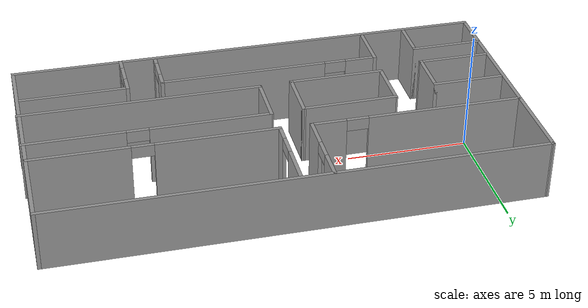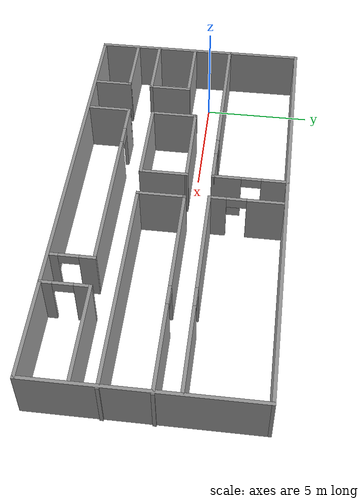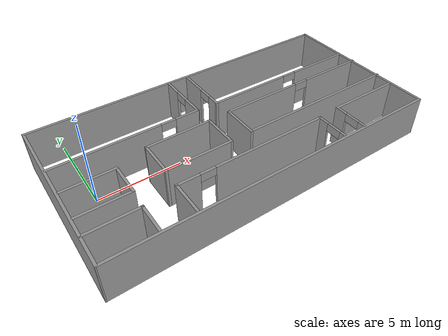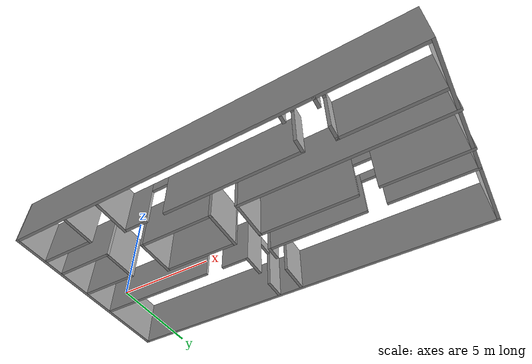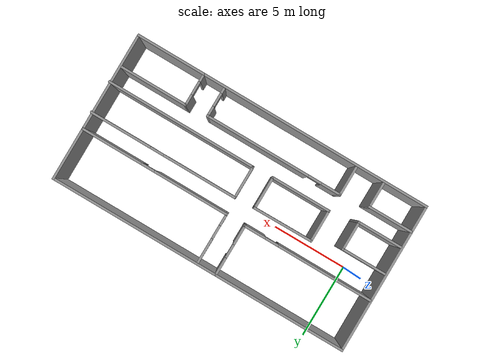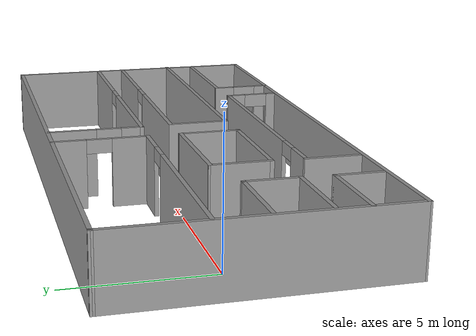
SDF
<?xml version='1.0'?>
<sdf version='1.7'>
  <model name='indoor_rooms'>
    <pose>8.06534 -0.706129 0 0 -0 0</pose>
    <link name='Wall_11'>
      <collision name='Wall_11_Collision'>
        <geometry>
          <box>
            <size>3 0.15 2.5</size>
          </box>
        </geometry>
        <pose>0 0 1.25 0 -0 0</pose>
      </collision>
      <visual name='Wall_11_Visual'>
        <pose>0 0 1.25 0 -0 0</pose>
        <geometry>
          <box>
            <size>3 0.15 2.5</size>
          </box>
        </geometry>
        <material>
          <script>
            <uri>file://media/materials/scripts/gazebo.material</uri>
            <name>Gazebo/Grey</name>
          </script>
          <ambient>1 1 1 1</ambient>
        </material>
        <meta>
          <layer>0</layer>
        </meta>
      </visual>
      <pose>-8.38252 -0.237632 0 0 -0 0</pose>
    </link>
    <link name='Wall_12'>
      <collision name='Wall_12_Collision'>
        <geometry>
          <box>
            <size>2 0.15 2.5</size>
          </box>
        </geometry>
        <pose>0 0 1.25 0 -0 0</pose>
      </collision>
      <visual name='Wall_12_Visual'>
        <pose>0 0 1.25 0 -0 0</pose>
        <geometry>
          <box>
            <size>2 0.15 2.5</size>
          </box>
        </geometry>
        <material>
          <script>
            <uri>file://media/materials/scripts/gazebo.material</uri>
            <name>Gazebo/Grey</name>
          </script>
          <ambient>1 1 1 1</ambient>
        </material>
        <meta>
          <layer>0</layer>
        </meta>
      </visual>
      <pose>-6.95752 -1.16263 0 0 -0 -1.5708</pose>
    </link>
    <link name='Wall_13'>
      <collision name='Wall_13_Collision'>
        <geometry>
          <box>
            <size>3 0.15 2.5</size>
          </box>
        </geometry>
        <pose>0 0 1.25 0 -0 0</pose>
      </collision>
      <visual name='Wall_13_Visual'>
        <pose>0 0 1.25 0 -0 0</pose>
        <geometry>
          <box>
            <size>3 0.15 2.5</size>
          </box>
        </geometry>
        <material>
          <script>
            <uri>file://media/materials/scripts/gazebo.material</uri>
            <name>Gazebo/Grey</name>
          </script>
          <ambient>1 1 1 1</ambient>
        </material>
        <meta>
          <layer>0</layer>
        </meta>
      </visual>
      <pose>-8.38252 -2.08763 0 0 -0 3.14159</pose>
    </link>
    <link name='Wall_15'>
      <collision name='Wall_15_Collision'>
        <geometry>
          <box>
            <size>3 0.15 2.5</size>
          </box>
        </geometry>
        <pose>0 0 1.25 0 -0 0</pose>
      </collision>
      <visual name='Wall_15_Visual'>
        <pose>0 0 1.25 0 -0 0</pose>
        <geometry>
          <box>
            <size>3 0.15 2.5</size>
          </box>
        </geometry>
        <material>
          <script>
            <uri>file://media/materials/scripts/gazebo.material</uri>
            <name>Gazebo/Grey</name>
          </script>
          <ambient>1 1 1 1</ambient>
        </material>
        <meta>
          <layer>0</layer>
        </meta>
      </visual>
      <pose>-8.45113 -3.18788 0 0 -0 0</pose>
    </link>
    <link name='Wall_16'>
      <collision name='Wall_16_Collision'>
        <geometry>
          <box>
            <size>1.75 0.15 2.5</size>
          </box>
        </geometry>
        <pose>0 0 1.25 0 -0 0</pose>
      </collision>
      <visual name='Wall_16_Visual'>
        <pose>0 0 1.25 0 -0 0</pose>
        <geometry>
          <box>
            <size>1.75 0.15 2.5</size>
          </box>
        </geometry>
        <material>
          <script>
            <uri>file://media/materials/scripts/gazebo.material</uri>
            <name>Gazebo/Grey</name>
          </script>
          <ambient>1 1 1 1</ambient>
        </material>
        <meta>
          <layer>0</layer>
        </meta>
      </visual>
      <pose>-7.02613 -3.98788 0 0 -0 -1.5708</pose>
    </link>
    <link name='Wall_18'>
      <pose>-5.56469 1.54624 0 0 -0 0</pose>
      <visual name='Wall_18_Visual_0'>
        <pose>-1.19487 0 1.25 0 -0 0</pose>
        <geometry>
          <box>
            <size>6.36025 0.15 2.5</size>
          </box>
        </geometry>
        <material>
          <script>
            <uri>file://media/materials/scripts/gazebo.material</uri>
            <name>Gazebo/Grey</name>
          </script>
          <ambient>1 1 1 1</ambient>
        </material>
        <meta>
          <layer>0</layer>
        </meta>
      </visual>
      <collision name='Wall_18_Collision_0'>
        <geometry>
          <box>
            <size>6.36025 0.15 2.5</size>
          </box>
        </geometry>
        <pose>-1.19487 0 1.25 0 -0 0</pose>
      </collision>
      <visual name='Wall_18_Visual_1'>
        <pose>3.63013 0 1.25 0 -0 0</pose>
        <geometry>
          <box>
            <size>1.48975 0.15 2.5</size>
          </box>
        </geometry>
        <material>
          <script>
            <uri>file://media/materials/scripts/gazebo.material</uri>
            <name>Gazebo/Grey</name>
          </script>
          <ambient>1 1 1 1</ambient>
        </material>
        <meta>
          <layer>0</layer>
        </meta>
      </visual>
      <collision name='Wall_18_Collision_1'>
        <geometry>
          <box>
            <size>1.48975 0.15 2.5</size>
          </box>
        </geometry>
        <pose>3.63013 0 1.25 0 -0 0</pose>
      </collision>
      <visual name='Wall_18_Visual_2'>
        <pose>2.43525 0 2.25 0 -0 0</pose>
        <geometry>
          <box>
            <size>0.9 0.15 0.5</size>
          </box>
        </geometry>
        <material>
          <script>
            <uri>file://media/materials/scripts/gazebo.material</uri>
            <name>Gazebo/Grey</name>
          </script>
          <ambient>1 1 1 1</ambient>
        </material>
        <meta>
          <layer>0</layer>
        </meta>
      </visual>
      <collision name='Wall_18_Collision_2'>
        <geometry>
          <box>
            <size>0.9 0.15 0.5</size>
          </box>
        </geometry>
        <pose>2.43525 0 2.25 0 -0 0</pose>
      </collision>
    </link>
    <link name='Wall_19'>
      <pose>-1.26469 3.22124 0 0 -0 1.5708</pose>
      <visual name='Wall_19_Visual_0'>
        <pose>-1.06996 0 1.25 0 -0 0</pose>
        <geometry>
          <box>
            <size>1.36008 0.15 2.5</size>
          </box>
        </geometry>
        <material>
          <script>
            <uri>file://media/materials/scripts/gazebo.material</uri>
            <name>Gazebo/Grey</name>
          </script>
          <ambient>1 1 1 1</ambient>
        </material>
        <meta>
          <layer>0</layer>
        </meta>
      </visual>
      <collision name='Wall_19_Collision_0'>
        <geometry>
          <box>
            <size>1.36008 0.15 2.5</size>
          </box>
        </geometry>
        <pose>-1.06996 0 1.25 0 -0 0</pose>
      </collision>
      <visual name='Wall_19_Visual_1'>
        <pose>1.13004 0 1.25 0 -0 0</pose>
        <geometry>
          <box>
            <size>1.23992 0.15 2.5</size>
          </box>
        </geometry>
        <material>
          <script>
            <uri>file://media/materials/scripts/gazebo.material</uri>
            <name>Gazebo/Grey</name>
          </script>
          <ambient>1 1 1 1</ambient>
        </material>
        <meta>
          <layer>0</layer>
        </meta>
      </visual>
      <collision name='Wall_19_Collision_1'>
        <geometry>
          <box>
            <size>1.23992 0.15 2.5</size>
          </box>
        </geometry>
        <pose>1.13004 0 1.25 0 -0 0</pose>
      </collision>
      <visual name='Wall_19_Visual_2'>
        <pose>0.060077 0 2.25 0 -0 0</pose>
        <geometry>
          <box>
            <size>0.9 0.15 0.5</size>
          </box>
        </geometry>
        <material>
          <script>
            <uri>file://media/materials/scripts/gazebo.material</uri>
            <name>Gazebo/Grey</name>
          </script>
          <ambient>1 1 1 1</ambient>
        </material>
        <meta>
          <layer>0</layer>
        </meta>
      </visual>
      <collision name='Wall_19_Collision_2'>
        <geometry>
          <box>
            <size>0.9 0.15 0.5</size>
          </box>
        </geometry>
        <pose>0.060077 0 2.25 0 -0 0</pose>
      </collision>
    </link>
    <link name='Wall_21'>
      <pose>0.015204 3.18741 0 0 -0 -1.5708</pose>
      <visual name='Wall_21_Visual_0'>
        <pose>-0.867181 0 1.25 0 -0 0</pose>
        <geometry>
          <box>
            <size>1.76564 0.15 2.5</size>
          </box>
        </geometry>
        <material>
          <script>
            <uri>file://media/materials/scripts/gazebo.material</uri>
            <name>Gazebo/Grey</name>
          </script>
          <ambient>1 1 1 1</ambient>
        </material>
        <meta>
          <layer>0</layer>
        </meta>
      </visual>
      <collision name='Wall_21_Collision_0'>
        <geometry>
          <box>
            <size>1.76564 0.15 2.5</size>
          </box>
        </geometry>
        <pose>-0.867181 0 1.25 0 -0 0</pose>
      </collision>
      <visual name='Wall_21_Visual_1'>
        <pose>1.33282 0 1.25 0 -0 0</pose>
        <geometry>
          <box>
            <size>0.834362 0.15 2.5</size>
          </box>
        </geometry>
        <material>
          <script>
            <uri>file://media/materials/scripts/gazebo.material</uri>
            <name>Gazebo/Grey</name>
          </script>
          <ambient>1 1 1 1</ambient>
        </material>
        <meta>
          <layer>0</layer>
        </meta>
      </visual>
      <collision name='Wall_21_Collision_1'>
        <geometry>
          <box>
            <size>0.834362 0.15 2.5</size>
          </box>
        </geometry>
        <pose>1.33282 0 1.25 0 -0 0</pose>
      </collision>
      <visual name='Wall_21_Visual_2'>
        <pose>0.465638 0 2.25 0 -0 0</pose>
        <geometry>
          <box>
            <size>0.9 0.15 0.5</size>
          </box>
        </geometry>
        <material>
          <script>
            <uri>file://media/materials/scripts/gazebo.material</uri>
            <name>Gazebo/Grey</name>
          </script>
          <ambient>1 1 1 1</ambient>
        </material>
        <meta>
          <layer>0</layer>
        </meta>
      </visual>
      <collision name='Wall_21_Collision_2'>
        <geometry>
          <box>
            <size>0.9 0.15 0.5</size>
          </box>
        </geometry>
        <pose>0.465638 0 2.25 0 -0 0</pose>
      </collision>
    </link>
    <link name='Wall_22'>
      <pose>4.9402 1.51241 0 0 -0 0</pose>
      <visual name='Wall_22_Visual_0'>
        <pose>-2.4797 0 1.25 0 -0 0</pose>
        <geometry>
          <box>
            <size>5.04061 0.15 2.5</size>
          </box>
        </geometry>
        <material>
          <script>
            <uri>file://media/materials/scripts/gazebo.material</uri>
            <name>Gazebo/Grey</name>
          </script>
          <ambient>1 1 1 1</ambient>
        </material>
        <meta>
          <layer>0</layer>
        </meta>
      </visual>
      <collision name='Wall_22_Collision_0'>
        <geometry>
          <box>
            <size>5.04061 0.15 2.5</size>
          </box>
        </geometry>
        <pose>-2.4797 0 1.25 0 -0 0</pose>
      </collision>
      <visual name='Wall_22_Visual_1'>
        <pose>2.9703 0 1.25 0 -0 0</pose>
        <geometry>
          <box>
            <size>4.05939 0.15 2.5</size>
          </box>
        </geometry>
        <material>
          <script>
            <uri>file://media/materials/scripts/gazebo.material</uri>
            <name>Gazebo/Grey</name>
          </script>
          <ambient>1 1 1 1</ambient>
        </material>
        <meta>
          <layer>0</layer>
        </meta>
      </visual>
      <collision name='Wall_22_Collision_1'>
        <geometry>
          <box>
            <size>4.05939 0.15 2.5</size>
          </box>
        </geometry>
        <pose>2.9703 0 1.25 0 -0 0</pose>
      </collision>
      <visual name='Wall_22_Visual_2'>
        <pose>0.490606 0 2.25 0 -0 0</pose>
        <geometry>
          <box>
            <size>0.9 0.15 0.5</size>
          </box>
        </geometry>
        <material>
          <script>
            <uri>file://media/materials/scripts/gazebo.material</uri>
            <name>Gazebo/Grey</name>
          </script>
          <ambient>1 1 1 1</ambient>
        </material>
        <meta>
          <layer>0</layer>
        </meta>
      </visual>
      <collision name='Wall_22_Collision_2'>
        <geometry>
          <box>
            <size>0.9 0.15 0.5</size>
          </box>
        </geometry>
        <pose>0.490606 0 2.25 0 -0 0</pose>
      </collision>
    </link>
    <link name='Wall_24'>
      <collision name='Wall_24_Collision'>
        <geometry>
          <box>
            <size>2.2157 0.15 2.5</size>
          </box>
        </geometry>
        <pose>0 0 1.25 0 -0 0</pose>
      </collision>
      <visual name='Wall_24_Visual'>
        <pose>0 0 1.25 0 -0 0</pose>
        <geometry>
          <box>
            <size>2.2157 0.15 2.5</size>
          </box>
        </geometry>
        <material>
          <script>
            <uri>file://media/materials/scripts/gazebo.material</uri>
            <name>Gazebo/Grey</name>
          </script>
          <ambient>1 1 1 1</ambient>
        </material>
        <meta>
          <layer>0</layer>
        </meta>
      </visual>
      <pose>-5.08483 -0.721597 0 0 -0 -1.5708</pose>
    </link>
    <link name='Wall_27'>
      <collision name='Wall_27_Collision'>
        <geometry>
          <box>
            <size>4 0.15 2.5</size>
          </box>
        </geometry>
        <pose>0 0 1.25 0 -0 0</pose>
      </collision>
      <visual name='Wall_27_Visual'>
        <pose>0 0 1.25 0 -0 0</pose>
        <geometry>
          <box>
            <size>4 0.15 2.5</size>
          </box>
        </geometry>
        <material>
          <script>
            <uri>file://media/materials/scripts/gazebo.material</uri>
            <name>Gazebo/Grey</name>
          </script>
          <ambient>1 1 1 1</ambient>
        </material>
        <meta>
          <layer>0</layer>
        </meta>
      </visual>
      <pose>-3.15984 -1.75444 0 0 -0 0</pose>
    </link>
    <link name='Wall_28'>
      <collision name='Wall_28_Collision'>
        <geometry>
          <box>
            <size>2.25 0.15 2.5</size>
          </box>
        </geometry>
        <pose>0 0 1.25 0 -0 0</pose>
      </collision>
      <visual name='Wall_28_Visual'>
        <pose>0 0 1.25 0 -0 0</pose>
        <geometry>
          <box>
            <size>2.25 0.15 2.5</size>
          </box>
        </geometry>
        <material>
          <script>
            <uri>file://media/materials/scripts/gazebo.material</uri>
            <name>Gazebo/Grey</name>
          </script>
          <ambient>1 1 1 1</ambient>
        </material>
        <meta>
          <layer>0</layer>
        </meta>
      </visual>
      <pose>-1.23483 -0.704444 0 0 -0 1.5708</pose>
    </link>
    <link name='Wall_29'>
      <collision name='Wall_29_Collision'>
        <geometry>
          <box>
            <size>4 0.15 2.5</size>
          </box>
        </geometry>
        <pose>0 0 1.25 0 -0 0</pose>
      </collision>
      <visual name='Wall_29_Visual'>
        <pose>0 0 1.25 0 -0 0</pose>
        <geometry>
          <box>
            <size>4 0.15 2.5</size>
          </box>
        </geometry>
        <material>
          <script>
            <uri>file://media/materials/scripts/gazebo.material</uri>
            <name>Gazebo/Grey</name>
          </script>
          <ambient>1 1 1 1</ambient>
        </material>
        <meta>
          <layer>0</layer>
        </meta>
      </visual>
      <pose>-3.15984 0.328403 0 0 -0 -3.13268</pose>
    </link>
    <link name='Wall_31'>
      <collision name='Wall_31_Collision'>
        <geometry>
          <box>
            <size>2.25 0.15 2.5</size>
          </box>
        </geometry>
        <pose>0 0 1.25 0 -0 0</pose>
      </collision>
      <visual name='Wall_31_Visual'>
        <pose>0 0 1.25 0 -0 0</pose>
        <geometry>
          <box>
            <size>2.25 0.15 2.5</size>
          </box>
        </geometry>
        <material>
          <script>
            <uri>file://media/materials/scripts/gazebo.material</uri>
            <name>Gazebo/Grey</name>
          </script>
          <ambient>1 1 1 1</ambient>
        </material>
        <meta>
          <layer>0</layer>
        </meta>
      </visual>
      <pose>0.106685 -0.635834 0 0 -0 -1.5708</pose>
    </link>
    <link name='Wall_32'>
      <collision name='Wall_32_Collision'>
        <geometry>
          <box>
            <size>10 0.15 2.5</size>
          </box>
        </geometry>
        <pose>0 0 1.25 0 -0 0</pose>
      </collision>
      <visual name='Wall_32_Visual'>
        <pose>0 0 1.25 0 -0 0</pose>
        <geometry>
          <box>
            <size>10 0.15 2.5</size>
          </box>
        </geometry>
        <material>
          <script>
            <uri>file://media/materials/scripts/gazebo.material</uri>
            <name>Gazebo/Grey</name>
          </script>
          <ambient>1 1 1 1</ambient>
        </material>
        <meta>
          <layer>0</layer>
        </meta>
      </visual>
      <pose>5.03169 -1.68583 0 0 -0 0</pose>
    </link>
    <link name='Wall_34'>
      <pose>5.03169 0.414166 0 0 -0 0</pose>
      <visual name='Wall_34_Visual_0'>
        <pose>-2.51031 0 1.25 0 -0 0</pose>
        <geometry>
          <box>
            <size>4.97937 0.15 2.5</size>
          </box>
        </geometry>
        <material>
          <script>
            <uri>file://media/materials/scripts/gazebo.material</uri>
            <name>Gazebo/Grey</name>
          </script>
          <ambient>1 1 1 1</ambient>
        </material>
        <meta>
          <layer>0</layer>
        </meta>
      </visual>
      <collision name='Wall_34_Collision_0'>
        <geometry>
          <box>
            <size>4.97937 0.15 2.5</size>
          </box>
        </geometry>
        <pose>-2.51031 0 1.25 0 -0 0</pose>
      </collision>
      <visual name='Wall_34_Visual_1'>
        <pose>2.93968 0 1.25 0 -0 0</pose>
        <geometry>
          <box>
            <size>4.12063 0.15 2.5</size>
          </box>
        </geometry>
        <material>
          <script>
            <uri>file://media/materials/scripts/gazebo.material</uri>
            <name>Gazebo/Grey</name>
          </script>
          <ambient>1 1 1 1</ambient>
        </material>
        <meta>
          <layer>0</layer>
        </meta>
      </visual>
      <collision name='Wall_34_Collision_1'>
        <geometry>
          <box>
            <size>4.12063 0.15 2.5</size>
          </box>
        </geometry>
        <pose>2.93968 0 1.25 0 -0 0</pose>
      </collision>
      <visual name='Wall_34_Visual_2'>
        <pose>0.429371 0 2.25 0 -0 0</pose>
        <geometry>
          <box>
            <size>0.9 0.15 0.5</size>
          </box>
        </geometry>
        <material>
          <script>
            <uri>file://media/materials/scripts/gazebo.material</uri>
            <name>Gazebo/Grey</name>
          </script>
          <ambient>1 1 1 1</ambient>
        </material>
        <meta>
          <layer>0</layer>
        </meta>
      </visual>
      <collision name='Wall_34_Collision_2'>
        <geometry>
          <box>
            <size>0.9 0.15 0.5</size>
          </box>
        </geometry>
        <pose>0.429371 0 2.25 0 -0 0</pose>
      </collision>
    </link>
    <link name='Wall_36'>
      <collision name='Wall_36_Collision'>
        <geometry>
          <box>
            <size>2 0.15 2.5</size>
          </box>
        </geometry>
        <pose>0 0 1.25 0 -0 0</pose>
      </collision>
      <visual name='Wall_36_Visual'>
        <pose>0 0 1.25 0 -0 0</pose>
        <geometry>
          <box>
            <size>2 0.15 2.5</size>
          </box>
        </geometry>
        <material>
          <script>
            <uri>file://media/materials/scripts/gazebo.material</uri>
            <name>Gazebo/Grey</name>
          </script>
          <ambient>1 1 1 1</ambient>
        </material>
        <meta>
          <layer>0</layer>
        </meta>
      </visual>
      <pose>-5.15344 -3.84092 0 0 -0 1.5708</pose>
    </link>
    <link name='Wall_37'>
      <pose>-0.603445 -2.91592 0 0 -0 0</pose>
      <visual name='Wall_37_Visual_0'>
        <pose>-3.94381 0 1.25 0 -0 0</pose>
        <geometry>
          <box>
            <size>1.36237 0.15 2.5</size>
          </box>
        </geometry>
        <material>
          <script>
            <uri>file://media/materials/scripts/gazebo.material</uri>
            <name>Gazebo/Grey</name>
          </script>
          <ambient>1 1 1 1</ambient>
        </material>
        <meta>
          <layer>0</layer>
        </meta>
      </visual>
      <collision name='Wall_37_Collision_0'>
        <geometry>
          <box>
            <size>1.36237 0.15 2.5</size>
          </box>
        </geometry>
        <pose>-3.94381 0 1.25 0 -0 0</pose>
      </collision>
      <visual name='Wall_37_Visual_1'>
        <pose>1.13119 0 1.25 0 -0 0</pose>
        <geometry>
          <box>
            <size>6.98763 0.15 2.5</size>
          </box>
        </geometry>
        <material>
          <script>
            <uri>file://media/materials/scripts/gazebo.material</uri>
            <name>Gazebo/Grey</name>
          </script>
          <ambient>1 1 1 1</ambient>
        </material>
        <meta>
          <layer>0</layer>
        </meta>
      </visual>
      <collision name='Wall_37_Collision_1'>
        <geometry>
          <box>
            <size>6.98763 0.15 2.5</size>
          </box>
        </geometry>
        <pose>1.13119 0 1.25 0 -0 0</pose>
      </collision>
      <visual name='Wall_37_Visual_2'>
        <pose>-2.81263 0 2.25 0 -0 0</pose>
        <geometry>
          <box>
            <size>0.9 0.15 0.5</size>
          </box>
        </geometry>
        <material>
          <script>
            <uri>file://media/materials/scripts/gazebo.material</uri>
            <name>Gazebo/Grey</name>
          </script>
          <ambient>1 1 1 1</ambient>
        </material>
        <meta>
          <layer>0</layer>
        </meta>
      </visual>
      <collision name='Wall_37_Collision_2'>
        <geometry>
          <box>
            <size>0.9 0.15 0.5</size>
          </box>
        </geometry>
        <pose>-2.81263 0 2.25 0 -0 0</pose>
      </collision>
    </link>
    <link name='Wall_38'>
      <pose>3.94656 -3.84092 0 0 -0 -1.5708</pose>
      <visual name='Wall_38_Visual_0'>
        <pose>-0.633943 0 1.25 0 -0 0</pose>
        <geometry>
          <box>
            <size>0.732115 0.15 2.5</size>
          </box>
        </geometry>
        <material>
          <script>
            <uri>file://media/materials/scripts/gazebo.material</uri>
            <name>Gazebo/Grey</name>
          </script>
          <ambient>1 1 1 1</ambient>
        </material>
        <meta>
          <layer>0</layer>
        </meta>
      </visual>
      <collision name='Wall_38_Collision_0'>
        <geometry>
          <box>
            <size>0.732115 0.15 2.5</size>
          </box>
        </geometry>
        <pose>-0.633943 0 1.25 0 -0 0</pose>
      </collision>
      <visual name='Wall_38_Visual_1'>
        <pose>0.816057 0 1.25 0 -0 0</pose>
        <geometry>
          <box>
            <size>0.367885 0.15 2.5</size>
          </box>
        </geometry>
        <material>
          <script>
            <uri>file://media/materials/scripts/gazebo.material</uri>
            <name>Gazebo/Grey</name>
          </script>
          <ambient>1 1 1 1</ambient>
        </material>
        <meta>
          <layer>0</layer>
        </meta>
      </visual>
      <collision name='Wall_38_Collision_1'>
        <geometry>
          <box>
            <size>0.367885 0.15 2.5</size>
          </box>
        </geometry>
        <pose>0.816057 0 1.25 0 -0 0</pose>
      </collision>
      <visual name='Wall_38_Visual_2'>
        <pose>0.182115 0 2.25 0 -0 0</pose>
        <geometry>
          <box>
            <size>0.9 0.15 0.5</size>
          </box>
        </geometry>
        <material>
          <script>
            <uri>file://media/materials/scripts/gazebo.material</uri>
            <name>Gazebo/Grey</name>
          </script>
          <ambient>1 1 1 1</ambient>
        </material>
        <meta>
          <layer>0</layer>
        </meta>
      </visual>
      <collision name='Wall_38_Collision_2'>
        <geometry>
          <box>
            <size>0.9 0.15 0.5</size>
          </box>
        </geometry>
        <pose>0.182115 0 2.25 0 -0 0</pose>
      </collision>
    </link>
    <link name='Wall_4'>
      <collision name='Wall_4_Collision'>
        <geometry>
          <box>
            <size>19.9546 0.15 2.5</size>
          </box>
        </geometry>
        <pose>0 0 1.25 0 -0 0</pose>
      </collision>
      <visual name='Wall_4_Visual'>
        <pose>0 0 1.25 0 -0 0</pose>
        <geometry>
          <box>
            <size>19.9546 0.15 2.5</size>
          </box>
        </geometry>
        <material>
          <script>
            <uri>file://media/materials/scripts/gazebo.material</uri>
            <name>Gazebo/Grey</name>
          </script>
          <ambient>1 1 1 1</ambient>
        </material>
        <meta>
          <layer>0</layer>
        </meta>
      </visual>
      <pose>-0.008656 -4.925 0 0 -0 0</pose>
    </link>
    <link name='Wall_40'>
      <pose>5.40112 -3.85314 0 0 -0 1.5708</pose>
      <visual name='Wall_40_Visual_0'>
        <pose>-0.842201 0 1.25 0 -0 0</pose>
        <geometry>
          <box>
            <size>0.565597 0.15 2.5</size>
          </box>
        </geometry>
        <material>
          <script>
            <uri>file://media/materials/scripts/gazebo.material</uri>
            <name>Gazebo/Grey</name>
          </script>
          <ambient>1 1 1 1</ambient>
        </material>
        <meta>
          <layer>0</layer>
        </meta>
      </visual>
      <collision name='Wall_40_Collision_0'>
        <geometry>
          <box>
            <size>0.565597 0.15 2.5</size>
          </box>
        </geometry>
        <pose>-0.842201 0 1.25 0 -0 0</pose>
      </collision>
      <visual name='Wall_40_Visual_1'>
        <pose>0.732799 0 1.25 0 -0 0</pose>
        <geometry>
          <box>
            <size>0.784403 0.15 2.5</size>
          </box>
        </geometry>
        <material>
          <script>
            <uri>file://media/materials/scripts/gazebo.material</uri>
            <name>Gazebo/Grey</name>
          </script>
          <ambient>1 1 1 1</ambient>
        </material>
        <meta>
          <layer>0</layer>
        </meta>
      </visual>
      <collision name='Wall_40_Collision_1'>
        <geometry>
          <box>
            <size>0.784403 0.15 2.5</size>
          </box>
        </geometry>
        <pose>0.732799 0 1.25 0 -0 0</pose>
      </collision>
      <visual name='Wall_40_Visual_2'>
        <pose>-0.109403 0 2.25 0 -0 0</pose>
        <geometry>
          <box>
            <size>0.9 0.15 0.5</size>
          </box>
        </geometry>
        <material>
          <script>
            <uri>file://media/materials/scripts/gazebo.material</uri>
            <name>Gazebo/Grey</name>
          </script>
          <ambient>1 1 1 1</ambient>
        </material>
        <meta>
          <layer>0</layer>
        </meta>
      </visual>
      <collision name='Wall_40_Collision_2'>
        <geometry>
          <box>
            <size>0.9 0.15 0.5</size>
          </box>
        </geometry>
        <pose>-0.109403 0 2.25 0 -0 0</pose>
      </collision>
    </link>
    <link name='Wall_41'>
      <collision name='Wall_41_Collision'>
        <geometry>
          <box>
            <size>4.5 0.15 2.5</size>
          </box>
        </geometry>
        <pose>0 0 1.25 0 -0 0</pose>
      </collision>
      <visual name='Wall_41_Visual'>
        <pose>0 0 1.25 0 -0 0</pose>
        <geometry>
          <box>
            <size>4.5 0.15 2.5</size>
          </box>
        </geometry>
        <material>
          <script>
            <uri>file://media/materials/scripts/gazebo.material</uri>
            <name>Gazebo/Grey</name>
          </script>
          <ambient>1 1 1 1</ambient>
        </material>
        <meta>
          <layer>0</layer>
        </meta>
      </visual>
      <pose>7.57612 -2.80314 0 0 -0 0</pose>
    </link>
    <link name='Wall_7'>
      <collision name='Wall_7_Collision'>
        <geometry>
          <box>
            <size>10 0.15 2.5</size>
          </box>
        </geometry>
        <pose>0 0 1.25 0 -0 0</pose>
      </collision>
      <visual name='Wall_7_Visual'>
        <pose>0 0 1.25 0 -0 0</pose>
        <geometry>
          <box>
            <size>10 0.15 2.5</size>
          </box>
        </geometry>
        <material>
          <script>
            <uri>file://media/materials/scripts/gazebo.material</uri>
            <name>Gazebo/Grey</name>
          </script>
          <ambient>1 1 1 1</ambient>
        </material>
        <meta>
          <layer>0</layer>
        </meta>
      </visual>
      <pose>9.89366 -0 0 0 -0 1.5708</pose>
    </link>
    <link name='Wall_8'>
      <collision name='Wall_8_Collision'>
        <geometry>
          <box>
            <size>20 0.15 2.5</size>
          </box>
        </geometry>
        <pose>0 0 1.25 0 -0 0</pose>
      </collision>
      <visual name='Wall_8_Visual'>
        <pose>0 0 1.25 0 -0 0</pose>
        <geometry>
          <box>
            <size>20 0.15 2.5</size>
          </box>
        </geometry>
        <material>
          <script>
            <uri>file://media/materials/scripts/gazebo.material</uri>
            <name>Gazebo/Grey</name>
          </script>
          <ambient>1 1 1 1</ambient>
        </material>
        <meta>
          <layer>0</layer>
        </meta>
      </visual>
      <pose>-0.03134 4.925 0 0 -0 3.14159</pose>
    </link>
    <link name='Wall_9'>
      <collision name='Wall_9_Collision'>
        <geometry>
          <box>
            <size>10 0.15 2.5</size>
          </box>
        </geometry>
        <pose>0 0 1.25 0 -0 0</pose>
      </collision>
      <visual name='Wall_9_Visual'>
        <pose>0 0 1.25 0 -0 0</pose>
        <geometry>
          <box>
            <size>10 0.15 2.5</size>
          </box>
        </geometry>
        <material>
          <script>
            <uri>file://media/materials/scripts/gazebo.material</uri>
            <name>Gazebo/Grey</name>
          </script>
          <ambient>1 1 1 1</ambient>
        </material>
        <meta>
          <layer>0</layer>
        </meta>
      </visual>
      <pose>-9.93366 -0 0 0 -0 -1.56619</pose>
    </link>
    <static>1</static>
  </model>
</sdf>
